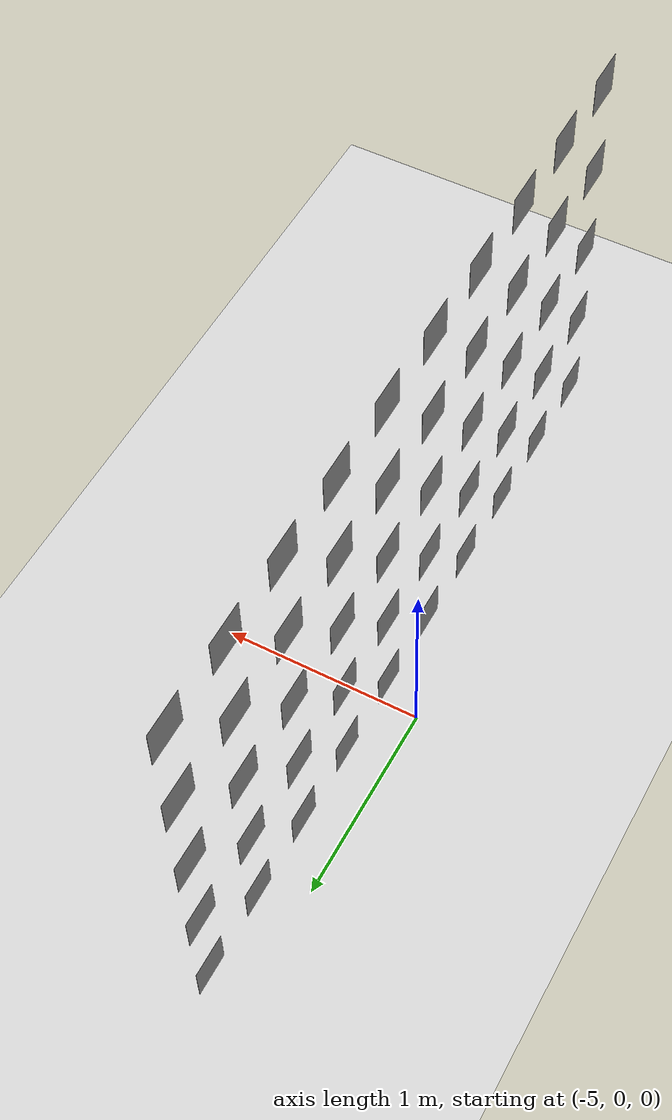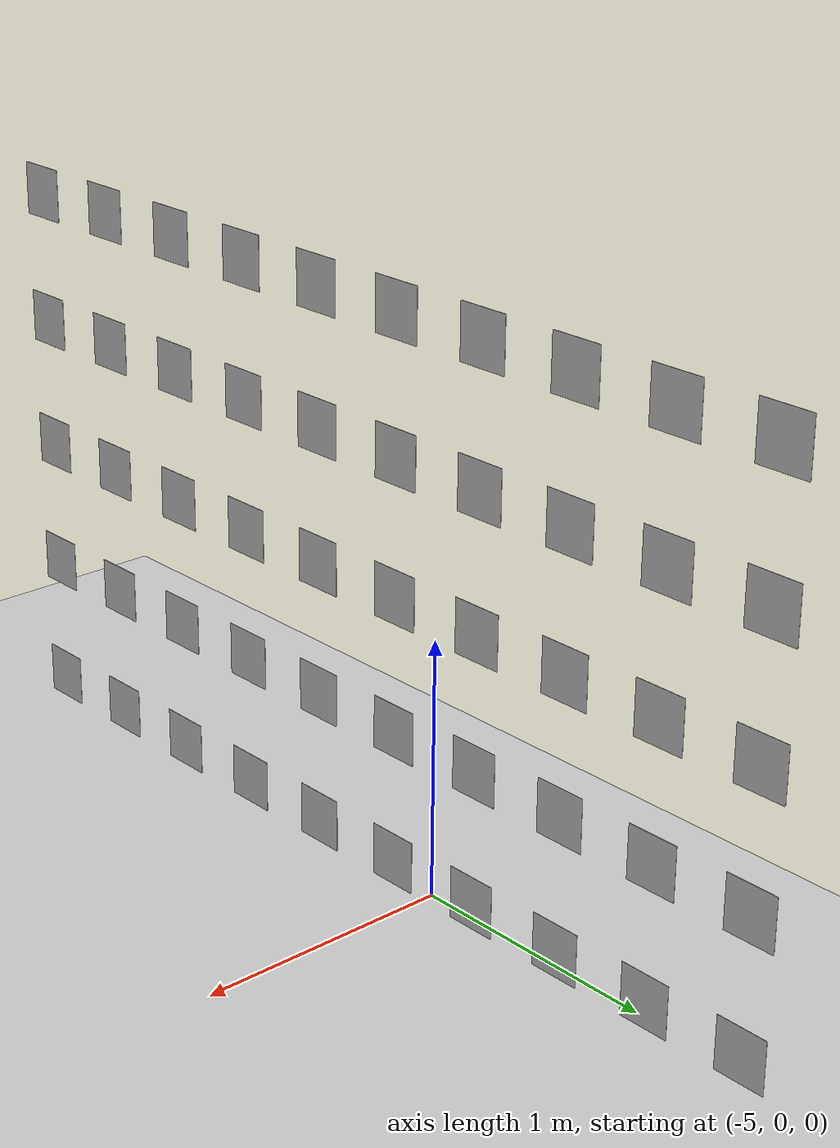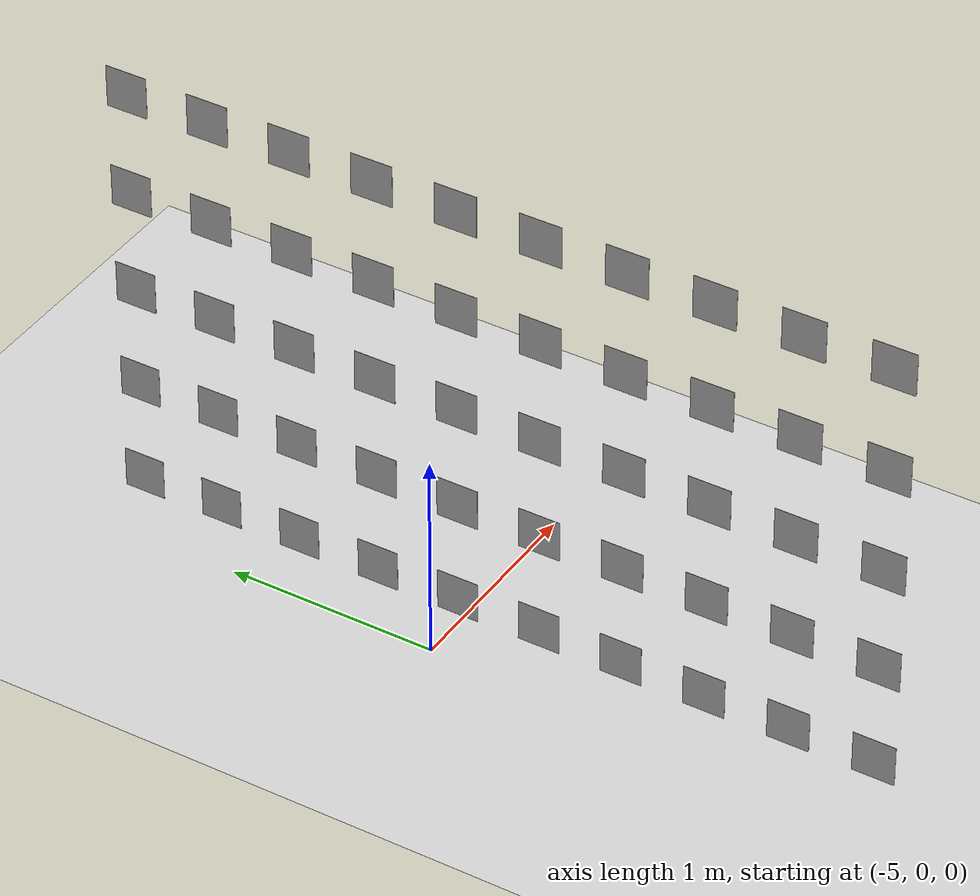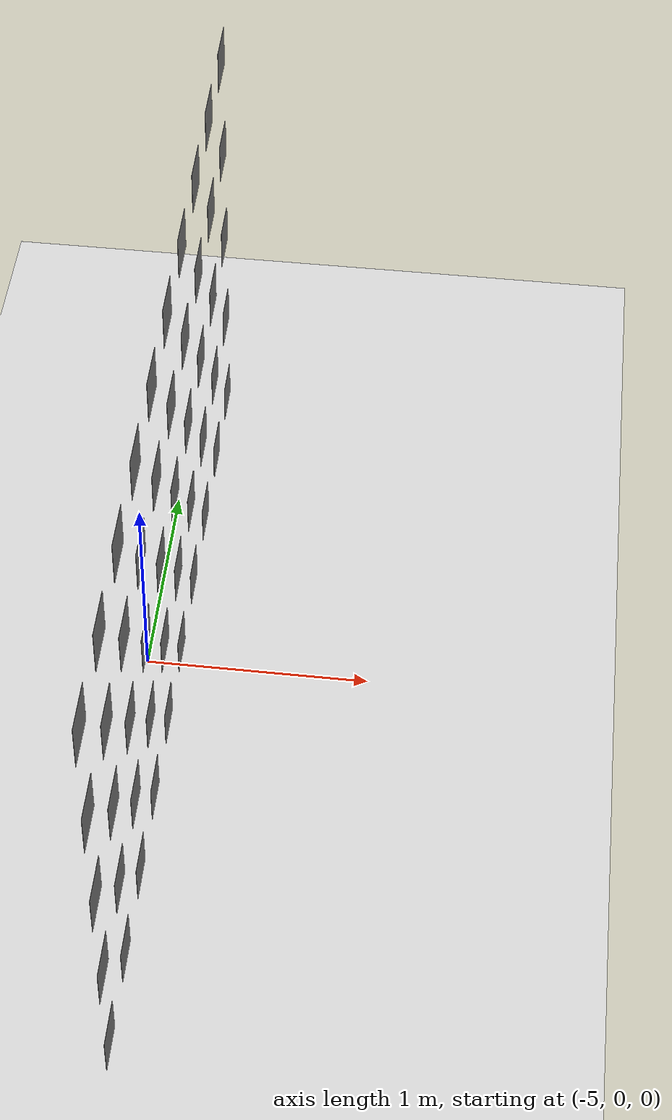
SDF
<sdf version="1.6">
 <world name="default">
  <model name="ground_plane">
   <static>1</static>
   <link name="link">
    <collision name="collision">
     <geometry><plane><normal>0 0 1</normal><size>100 100</size></plane></geometry>
     <surface><friction><ode><mu>100</mu><mu2>50</mu2></ode></friction></surface>
    </collision>
    <visual name="visual">
     <cast_shadows>0</cast_shadows>
     <geometry><plane><normal>0 0 1</normal><size>100 100</size></plane></geometry>
     <material>
      <script><uri>file://media/materials/scripts/gazebo.material</uri><name>Gazebo/Grey</name></script>
     </material>
    </visual>
   </link>
  </model>
  <model name="home1_tag2">
   <model name="aruco50">
    <static>1</static>
    <link name="link">
     <pose>0 0 0.1 0 -0 0</pose>
     <collision name="collision"><geometry><box><size>0.2 0.001 0.2</size></box></geometry></collision>
     <visual name="visual">
      <cast_shadows>0</cast_shadows>
      <geometry><box><size>0.2 0.001 0.2</size></box></geometry>
      <material>
       <script>
        <uri>model://aruco50/materials/scripts</uri>
        <uri>model://aruco50/materials/textures</uri>
        <name>vrc/aruco50</name>
       </script>
      </material>
     </visual>
    </link>
    <pose>4.95 -1.8 0.1 0 0 -1.57</pose>
   </model>
   <model name="aruco51">
    <static>1</static>
    <link name="link">
     <pose>0 0 0.1 0 -0 0</pose>
     <collision name="collision"><geometry><box><size>0.2 0.001 0.2</size></box></geometry></collision>
     <visual name="visual">
      <cast_shadows>0</cast_shadows>
      <geometry><box><size>0.2 0.001 0.2</size></box></geometry>
      <material>
       <script>
        <uri>model://aruco51/materials/scripts</uri>
        <uri>model://aruco51/materials/textures</uri>
        <name>vrc/aruco51</name>
       </script>
      </material>
     </visual>
    </link>
    <pose>4.95 -1.4 0.1 0 0 -1.57</pose>
   </model>
   <model name="aruco52">
    <static>1</static>
    <link name="link">
     <pose>0 0 0.1 0 -0 0</pose>
     <collision name="collision"><geometry><box><size>0.2 0.001 0.2</size></box></geometry></collision>
     <visual name="visual">
      <cast_shadows>0</cast_shadows>
      <geometry><box><size>0.2 0.001 0.2</size></box></geometry>
      <material>
       <script>
        <uri>model://aruco52/materials/scripts</uri>
        <uri>model://aruco52/materials/textures</uri>
        <name>vrc/aruco52</name>
       </script>
      </material>
     </visual>
    </link>
    <pose>4.95 -1 0.1 0 0 -1.57</pose>
   </model>
   <model name="aruco53">
    <static>1</static>
    <link name="link">
     <pose>0 0 0.1 0 -0 0</pose>
     <collision name="collision"><geometry><box><size>0.2 0.001 0.2</size></box></geometry></collision>
     <visual name="visual">
      <cast_shadows>0</cast_shadows>
      <geometry><box><size>0.2 0.001 0.2</size></box></geometry>
      <material>
       <script>
        <uri>model://aruco53/materials/scripts</uri>
        <uri>model://aruco53/materials/textures</uri>
        <name>vrc/aruco53</name>
       </script>
      </material>
     </visual>
    </link>
    <pose>4.95 -0.6 0.1 0 0 -1.57</pose>
   </model>
   <model name="aruco54">
    <static>1</static>
    <link name="link">
     <pose>0 0 0.1 0 -0 0</pose>
     <collision name="collision"><geometry><box><size>0.2 0.001 0.2</size></box></geometry></collision>
     <visual name="visual">
      <cast_shadows>0</cast_shadows>
      <geometry><box><size>0.2 0.001 0.2</size></box></geometry>
      <material>
       <script>
        <uri>model://aruco54/materials/scripts</uri>
        <uri>model://aruco54/materials/textures</uri>
        <name>vrc/aruco54</name>
       </script>
      </material>
     </visual>
    </link>
    <pose>4.95 -0.2 0.1 0 0 -1.57</pose>
   </model>
   <model name="aruco55">
    <static>1</static>
    <link name="link">
     <pose>0 0 0.1 0 -0 0</pose>
     <collision name="collision"><geometry><box><size>0.2 0.001 0.2</size></box></geometry></collision>
     <visual name="visual">
      <cast_shadows>0</cast_shadows>
      <geometry><box><size>0.2 0.001 0.2</size></box></geometry>
      <material>
       <script>
        <uri>model://aruco55/materials/scripts</uri>
        <uri>model://aruco55/materials/textures</uri>
        <name>vrc/aruco55</name>
       </script>
      </material>
     </visual>
    </link>
    <pose>4.95 0.2 0.1 0 0 -1.57</pose>
   </model>
   <model name="aruco56">
    <static>1</static>
    <link name="link">
     <pose>0 0 0.1 0 -0 0</pose>
     <collision name="collision"><geometry><box><size>0.2 0.001 0.2</size></box></geometry></collision>
     <visual name="visual">
      <cast_shadows>0</cast_shadows>
      <geometry><box><size>0.2 0.001 0.2</size></box></geometry>
      <material>
       <script>
        <uri>model://aruco56/materials/scripts</uri>
        <uri>model://aruco56/materials/textures</uri>
        <name>vrc/aruco56</name>
       </script>
      </material>
     </visual>
    </link>
    <pose>4.95 0.6 0.1 0 0 -1.57</pose>
   </model>
   <model name="aruco57">
    <static>1</static>
    <link name="link">
     <pose>0 0 0.1 0 -0 0</pose>
     <collision name="collision"><geometry><box><size>0.2 0.001 0.2</size></box></geometry></collision>
     <visual name="visual">
      <cast_shadows>0</cast_shadows>
      <geometry><box><size>0.2 0.001 0.2</size></box></geometry>
      <material>
       <script>
        <uri>model://aruco57/materials/scripts</uri>
        <uri>model://aruco57/materials/textures</uri>
        <name>vrc/aruco57</name>
       </script>
      </material>
     </visual>
    </link>
    <pose>4.95 1 0.1 0 0 -1.57</pose>
   </model>
   <model name="aruco58">
    <static>1</static>
    <link name="link">
     <pose>0 0 0.1 0 -0 0</pose>
     <collision name="collision"><geometry><box><size>0.2 0.001 0.2</size></box></geometry></collision>
     <visual name="visual">
      <cast_shadows>0</cast_shadows>
      <geometry><box><size>0.2 0.001 0.2</size></box></geometry>
      <material>
       <script>
        <uri>model://aruco58/materials/scripts</uri>
        <uri>model://aruco58/materials/textures</uri>
        <name>vrc/aruco58</name>
       </script>
      </material>
     </visual>
    </link>
    <pose>4.95 1.4 0.1 0 0 -1.57</pose>
   </model>
   <model name="aruco59">
    <static>1</static>
    <link name="link">
     <pose>0 0 0.1 0 -0 0</pose>
     <collision name="collision"><geometry><box><size>0.2 0.001 0.2</size></box></geometry></collision>
     <visual name="visual">
      <cast_shadows>0</cast_shadows>
      <geometry><box><size>0.2 0.001 0.2</size></box></geometry>
      <material>
       <script>
        <uri>model://aruco59/materials/scripts</uri>
        <uri>model://aruco59/materials/textures</uri>
        <name>vrc/aruco59</name>
       </script>
      </material>
     </visual>
    </link>
    <pose>4.95 1.8 0.1 0 0 -1.57</pose>
   </model>
   <model name="aruco60">
    <static>1</static>
    <link name="link">
     <pose>0 0 0.1 0 -0 0</pose>
     <collision name="collision"><geometry><box><size>0.2 0.001 0.2</size></box></geometry></collision>
     <visual name="visual">
      <cast_shadows>0</cast_shadows>
      <geometry><box><size>0.2 0.001 0.2</size></box></geometry>
      <material>
       <script>
        <uri>model://aruco60/materials/scripts</uri>
        <uri>model://aruco60/materials/textures</uri>
        <name>vrc/aruco60</name>
       </script>
      </material>
     </visual>
    </link>
    <pose>4.95 -1.8 0.6 0 0 -1.57</pose>
   </model>
   <model name="aruco61">
    <static>1</static>
    <link name="link">
     <pose>0 0 0.1 0 -0 0</pose>
     <collision name="collision"><geometry><box><size>0.2 0.001 0.2</size></box></geometry></collision>
     <visual name="visual">
      <cast_shadows>0</cast_shadows>
      <geometry><box><size>0.2 0.001 0.2</size></box></geometry>
      <material>
       <script>
        <uri>model://aruco61/materials/scripts</uri>
        <uri>model://aruco61/materials/textures</uri>
        <name>vrc/aruco61</name>
       </script>
      </material>
     </visual>
    </link>
    <pose>4.95 -1.4 0.6 0 0 -1.57</pose>
   </model>
   <model name="aruco62">
    <static>1</static>
    <link name="link">
     <pose>0 0 0.1 0 -0 0</pose>
     <collision name="collision"><geometry><box><size>0.2 0.001 0.2</size></box></geometry></collision>
     <visual name="visual">
      <cast_shadows>0</cast_shadows>
      <geometry><box><size>0.2 0.001 0.2</size></box></geometry>
      <material>
       <script>
        <uri>model://aruco62/materials/scripts</uri>
        <uri>model://aruco62/materials/textures</uri>
        <name>vrc/aruco62</name>
       </script>
      </material>
     </visual>
    </link>
    <pose>4.95 -1 0.6 0 0 -1.57</pose>
   </model>
   <model name="aruco63">
    <static>1</static>
    <link name="link">
     <pose>0 0 0.1 0 -0 0</pose>
     <collision name="collision"><geometry><box><size>0.2 0.001 0.2</size></box></geometry></collision>
     <visual name="visual">
      <cast_shadows>0</cast_shadows>
      <geometry><box><size>0.2 0.001 0.2</size></box></geometry>
      <material>
       <script>
        <uri>model://aruco63/materials/scripts</uri>
        <uri>model://aruco63/materials/textures</uri>
        <name>vrc/aruco63</name>
       </script>
      </material>
     </visual>
    </link>
    <pose>4.95 -0.6 0.6 0 0 -1.57</pose>
   </model>
   <model name="aruco64">
    <static>1</static>
    <link name="link">
     <pose>0 0 0.1 0 -0 0</pose>
     <collision name="collision"><geometry><box><size>0.2 0.001 0.2</size></box></geometry></collision>
     <visual name="visual">
      <cast_shadows>0</cast_shadows>
      <geometry><box><size>0.2 0.001 0.2</size></box></geometry>
      <material>
       <script>
        <uri>model://aruco64/materials/scripts</uri>
        <uri>model://aruco64/materials/textures</uri>
        <name>vrc/aruco64</name>
       </script>
      </material>
     </visual>
    </link>
    <pose>4.95 -0.2 0.6 0 0 -1.57</pose>
   </model>
   <model name="aruco65">
    <static>1</static>
    <link name="link">
     <pose>0 0 0.1 0 -0 0</pose>
     <collision name="collision"><geometry><box><size>0.2 0.001 0.2</size></box></geometry></collision>
     <visual name="visual">
      <cast_shadows>0</cast_shadows>
      <geometry><box><size>0.2 0.001 0.2</size></box></geometry>
      <material>
       <script>
        <uri>model://aruco65/materials/scripts</uri>
        <uri>model://aruco65/materials/textures</uri>
        <name>vrc/aruco65</name>
       </script>
      </material>
     </visual>
    </link>
    <pose>4.95 0.2 0.6 0 0 -1.57</pose>
   </model>
   <model name="aruco66">
    <static>1</static>
    <link name="link">
     <pose>0 0 0.1 0 -0 0</pose>
     <collision name="collision"><geometry><box><size>0.2 0.001 0.2</size></box></geometry></collision>
     <visual name="visual">
      <cast_shadows>0</cast_shadows>
      <geometry><box><size>0.2 0.001 0.2</size></box></geometry>
      <material>
       <script>
        <uri>model://aruco66/materials/scripts</uri>
        <uri>model://aruco66/materials/textures</uri>
        <name>vrc/aruco66</name>
       </script>
      </material>
     </visual>
    </link>
    <pose>4.95 0.6 0.6 0 0 -1.57</pose>
   </model>
   <model name="aruco67">
    <static>1</static>
    <link name="link">
     <pose>0 0 0.1 0 -0 0</pose>
     <collision name="collision"><geometry><box><size>0.2 0.001 0.2</size></box></geometry></collision>
     <visual name="visual">
      <cast_shadows>0</cast_shadows>
      <geometry><box><size>0.2 0.001 0.2</size></box></geometry>
      <material>
       <script>
        <uri>model://aruco67/materials/scripts</uri>
        <uri>model://aruco67/materials/textures</uri>
        <name>vrc/aruco67</name>
       </script>
      </material>
     </visual>
    </link>
    <pose>4.95 1 0.6 0 0 -1.57</pose>
   </model>
   <model name="aruco68">
    <static>1</static>
    <link name="link">
     <pose>0 0 0.1 0 -0 0</pose>
     <collision name="collision"><geometry><box><size>0.2 0.001 0.2</size></box></geometry></collision>
     <visual name="visual">
      <cast_shadows>0</cast_shadows>
      <geometry><box><size>0.2 0.001 0.2</size></box></geometry>
      <material>
       <script>
        <uri>model://aruco68/materials/scripts</uri>
        <uri>model://aruco68/materials/textures</uri>
        <name>vrc/aruco68</name>
       </script>
      </material>
     </visual>
    </link>
    <pose>4.95 1.4 0.6 0 0 -1.57</pose>
   </model>
   <model name="aruco69">
    <static>1</static>
    <link name="link">
     <pose>0 0 0.1 0 -0 0</pose>
     <collision name="collision"><geometry><box><size>0.2 0.001 0.2</size></box></geometry></collision>
     <visual name="visual">
      <cast_shadows>0</cast_shadows>
      <geometry><box><size>0.2 0.001 0.2</size></box></geometry>
      <material>
       <script>
        <uri>model://aruco69/materials/scripts</uri>
        <uri>model://aruco69/materials/textures</uri>
        <name>vrc/aruco69</name>
       </script>
      </material>
     </visual>
    </link>
    <pose>4.95 1.8 0.6 0 0 -1.57</pose>
   </model>
   <model name="aruco70">
    <static>1</static>
    <link name="link">
     <pose>0 0 0.1 0 -0 0</pose>
     <collision name="collision"><geometry><box><size>0.2 0.001 0.2</size></box></geometry></collision>
     <visual name="visual">
      <cast_shadows>0</cast_shadows>
      <geometry><box><size>0.2 0.001 0.2</size></box></geometry>
      <material>
       <script>
        <uri>model://aruco70/materials/scripts</uri>
        <uri>model://aruco70/materials/textures</uri>
        <name>vrc/aruco70</name>
       </script>
      </material>
     </visual>
    </link>
    <pose>4.95 -1.8 1.1 0 0 -1.57</pose>
   </model>
   <model name="aruco71">
    <static>1</static>
    <link name="link">
     <pose>0 0 0.1 0 -0 0</pose>
     <collision name="collision"><geometry><box><size>0.2 0.001 0.2</size></box></geometry></collision>
     <visual name="visual">
      <cast_shadows>0</cast_shadows>
      <geometry><box><size>0.2 0.001 0.2</size></box></geometry>
      <material>
       <script>
        <uri>model://aruco71/materials/scripts</uri>
        <uri>model://aruco71/materials/textures</uri>
        <name>vrc/aruco71</name>
       </script>
      </material>
     </visual>
    </link>
    <pose>4.95 -1.4 1.1 0 0 -1.57</pose>
   </model>
   <model name="aruco72">
    <static>1</static>
    <link name="link">
     <pose>0 0 0.1 0 -0 0</pose>
     <collision name="collision"><geometry><box><size>0.2 0.001 0.2</size></box></geometry></collision>
     <visual name="visual">
      <cast_shadows>0</cast_shadows>
      <geometry><box><size>0.2 0.001 0.2</size></box></geometry>
      <material>
       <script>
        <uri>model://aruco72/materials/scripts</uri>
        <uri>model://aruco72/materials/textures</uri>
        <name>vrc/aruco72</name>
       </script>
      </material>
     </visual>
    </link>
    <pose>4.95 -1 1.1 0 0 -1.57</pose>
   </model>
   <model name="aruco73">
    <static>1</static>
    <link name="link">
     <pose>0 0 0.1 0 -0 0</pose>
     <collision name="collision"><geometry><box><size>0.2 0.001 0.2</size></box></geometry></collision>
     <visual name="visual">
      <cast_shadows>0</cast_shadows>
      <geometry><box><size>0.2 0.001 0.2</size></box></geometry>
      <material>
       <script>
        <uri>model://aruco73/materials/scripts</uri>
        <uri>model://aruco73/materials/textures</uri>
        <name>vrc/aruco73</name>
       </script>
      </material>
     </visual>
    </link>
    <pose>4.95 -0.6 1.1 0 0 -1.57</pose>
   </model>
   <model name="aruco74">
    <static>1</static>
    <link name="link">
     <pose>0 0 0.1 0 -0 0</pose>
     <collision name="collision"><geometry><box><size>0.2 0.001 0.2</size></box></geometry></collision>
     <visual name="visual">
      <cast_shadows>0</cast_shadows>
      <geometry><box><size>0.2 0.001 0.2</size></box></geometry>
      <material>
       <script>
        <uri>model://aruco74/materials/scripts</uri>
        <uri>model://aruco74/materials/textures</uri>
        <name>vrc/aruco74</name>
       </script>
      </material>
     </visual>
    </link>
    <pose>4.95 -0.2 1.1 0 0 -1.57</pose>
   </model>
   <model name="aruco75">
    <static>1</static>
    <link name="link">
     <pose>0 0 0.1 0 -0 0</pose>
     <collision name="collision"><geometry><box><size>0.2 0.001 0.2</size></box></geometry></collision>
     <visual name="visual">
      <cast_shadows>0</cast_shadows>
      <geometry><box><size>0.2 0.001 0.2</size></box></geometry>
      <material>
       <script>
        <uri>model://aruco75/materials/scripts</uri>
        <uri>model://aruco75/materials/textures</uri>
        <name>vrc/aruco75</name>
       </script>
      </material>
     </visual>
    </link>
    <pose>4.95 0.2 1.1 0 0 -1.57</pose>
   </model>
   <model name="aruco76">
    <static>1</static>
    <link name="link">
     <pose>0 0 0.1 0 -0 0</pose>
     <collision name="collision"><geometry><box><size>0.2 0.001 0.2</size></box></geometry></collision>
     <visual name="visual">
      <cast_shadows>0</cast_shadows>
      <geometry><box><size>0.2 0.001 0.2</size></box></geometry>
      <material>
       <script>
        <uri>model://aruco76/materials/scripts</uri>
        <uri>model://aruco76/materials/textures</uri>
        <name>vrc/aruco76</name>
       </script>
      </material>
     </visual>
    </link>
    <pose>4.95 0.6 1.1 0 0 -1.57</pose>
   </model>
   <model name="aruco77">
    <static>1</static>
    <link name="link">
     <pose>0 0 0.1 0 -0 0</pose>
     <collision name="collision"><geometry><box><size>0.2 0.001 0.2</size></box></geometry></collision>
     <visual name="visual">
      <cast_shadows>0</cast_shadows>
      <geometry><box><size>0.2 0.001 0.2</size></box></geometry>
      <material>
       <script>
        <uri>model://aruco77/materials/scripts</uri>
        <uri>model://aruco77/materials/textures</uri>
        <name>vrc/aruco77</name>
       </script>
      </material>
     </visual>
    </link>
    <pose>4.95 1 1.1 0 0 -1.57</pose>
   </model>
   <model name="aruco78">
    <static>1</static>
    <link name="link">
     <pose>0 0 0.1 0 -0 0</pose>
     <collision name="collision"><geometry><box><size>0.2 0.001 0.2</size></box></geometry></collision>
     <visual name="visual">
      <cast_shadows>0</cast_shadows>
      <geometry><box><size>0.2 0.001 0.2</size></box></geometry>
      <material>
       <script>
        <uri>model://aruco78/materials/scripts</uri>
        <uri>model://aruco78/materials/textures</uri>
        <name>vrc/aruco78</name>
       </script>
      </material>
     </visual>
    </link>
    <pose>4.95 1.4 1.1 0 0 -1.57</pose>
   </model>
   <model name="aruco79">
    <static>1</static>
    <link name="link">
     <pose>0 0 0.1 0 -0 0</pose>
     <collision name="collision"><geometry><box><size>0.2 0.001 0.2</size></box></geometry></collision>
     <visual name="visual">
      <cast_shadows>0</cast_shadows>
      <geometry><box><size>0.2 0.001 0.2</size></box></geometry>
      <material>
       <script>
        <uri>model://aruco79/materials/scripts</uri>
        <uri>model://aruco79/materials/textures</uri>
        <name>vrc/aruco79</name>
       </script>
      </material>
     </visual>
    </link>
    <pose>4.95 1.8 1.1 0 0 -1.57</pose>
   </model>
   <model name="aruco80">
    <static>1</static>
    <link name="link">
     <pose>0 0 0.1 0 -0 0</pose>
     <collision name="collision"><geometry><box><size>0.2 0.001 0.2</size></box></geometry></collision>
     <visual name="visual">
      <cast_shadows>0</cast_shadows>
      <geometry><box><size>0.2 0.001 0.2</size></box></geometry>
      <material>
       <script>
        <uri>model://aruco80/materials/scripts</uri>
        <uri>model://aruco80/materials/textures</uri>
        <name>vrc/aruco80</name>
       </script>
      </material>
     </visual>
    </link>
    <pose>4.95 -1.8 1.6 0 0 -1.57</pose>
   </model>
   <model name="aruco81">
    <static>1</static>
    <link name="link">
     <pose>0 0 0.1 0 -0 0</pose>
     <collision name="collision"><geometry><box><size>0.2 0.001 0.2</size></box></geometry></collision>
     <visual name="visual">
      <cast_shadows>0</cast_shadows>
      <geometry><box><size>0.2 0.001 0.2</size></box></geometry>
      <material>
       <script>
        <uri>model://aruco81/materials/scripts</uri>
        <uri>model://aruco81/materials/textures</uri>
        <name>vrc/aruco81</name>
       </script>
      </material>
     </visual>
    </link>
    <pose>4.95 -1.4 1.6 0 0 -1.57</pose>
   </model>
   <model name="aruco82">
    <static>1</static>
    <link name="link">
     <pose>0 0 0.1 0 -0 0</pose>
     <collision name="collision"><geometry><box><size>0.2 0.001 0.2</size></box></geometry></collision>
     <visual name="visual">
      <cast_shadows>0</cast_shadows>
      <geometry><box><size>0.2 0.001 0.2</size></box></geometry>
      <material>
       <script>
        <uri>model://aruco82/materials/scripts</uri>
        <uri>model://aruco82/materials/textures</uri>
        <name>vrc/aruco82</name>
       </script>
      </material>
     </visual>
    </link>
    <pose>4.95 -1 1.6 0 0 -1.57</pose>
   </model>
   <model name="aruco83">
    <static>1</static>
    <link name="link">
     <pose>0 0 0.1 0 -0 0</pose>
     <collision name="collision"><geometry><box><size>0.2 0.001 0.2</size></box></geometry></collision>
     <visual name="visual">
      <cast_shadows>0</cast_shadows>
      <geometry><box><size>0.2 0.001 0.2</size></box></geometry>
      <material>
       <script>
        <uri>model://aruco83/materials/scripts</uri>
        <uri>model://aruco83/materials/textures</uri>
        <name>vrc/aruco83</name>
       </script>
      </material>
     </visual>
    </link>
    <pose>4.95 -0.6 1.6 0 0 -1.57</pose>
   </model>
   <model name="aruco84">
    <static>1</static>
    <link name="link">
     <pose>0 0 0.1 0 -0 0</pose>
     <collision name="collision"><geometry><box><size>0.2 0.001 0.2</size></box></geometry></collision>
     <visual name="visual">
      <cast_shadows>0</cast_shadows>
      <geometry><box><size>0.2 0.001 0.2</size></box></geometry>
      <material>
       <script>
        <uri>model://aruco84/materials/scripts</uri>
        <uri>model://aruco84/materials/textures</uri>
        <name>vrc/aruco84</name>
       </script>
      </material>
     </visual>
    </link>
    <pose>4.95 -0.2 1.6 0 0 -1.57</pose>
   </model>
   <model name="aruco85">
    <static>1</static>
    <link name="link">
     <pose>0 0 0.1 0 -0 0</pose>
     <collision name="collision"><geometry><box><size>0.2 0.001 0.2</size></box></geometry></collision>
     <visual name="visual">
      <cast_shadows>0</cast_shadows>
      <geometry><box><size>0.2 0.001 0.2</size></box></geometry>
      <material>
       <script>
        <uri>model://aruco85/materials/scripts</uri>
        <uri>model://aruco85/materials/textures</uri>
        <name>vrc/aruco85</name>
       </script>
      </material>
     </visual>
    </link>
    <pose>4.95 0.2 1.6 0 0 -1.57</pose>
   </model>
   <model name="aruco86">
    <static>1</static>
    <link name="link">
     <pose>0 0 0.1 0 -0 0</pose>
     <collision name="collision"><geometry><box><size>0.2 0.001 0.2</size></box></geometry></collision>
     <visual name="visual">
      <cast_shadows>0</cast_shadows>
      <geometry><box><size>0.2 0.001 0.2</size></box></geometry>
      <material>
       <script>
        <uri>model://aruco86/materials/scripts</uri>
        <uri>model://aruco86/materials/textures</uri>
        <name>vrc/aruco86</name>
       </script>
      </material>
     </visual>
    </link>
    <pose>4.95 0.6 1.6 0 0 -1.57</pose>
   </model>
   <model name="aruco87">
    <static>1</static>
    <link name="link">
     <pose>0 0 0.1 0 -0 0</pose>
     <collision name="collision"><geometry><box><size>0.2 0.001 0.2</size></box></geometry></collision>
     <visual name="visual">
      <cast_shadows>0</cast_shadows>
      <geometry><box><size>0.2 0.001 0.2</size></box></geometry>
      <material>
       <script>
        <uri>model://aruco87/materials/scripts</uri>
        <uri>model://aruco87/materials/textures</uri>
        <name>vrc/aruco87</name>
       </script>
      </material>
     </visual>
    </link>
    <pose>4.95 1 1.6 0 0 -1.57</pose>
   </model>
   <model name="aruco88">
    <static>1</static>
    <link name="link">
     <pose>0 0 0.1 0 -0 0</pose>
     <collision name="collision"><geometry><box><size>0.2 0.001 0.2</size></box></geometry></collision>
     <visual name="visual">
      <cast_shadows>0</cast_shadows>
      <geometry><box><size>0.2 0.001 0.2</size></box></geometry>
      <material>
       <script>
        <uri>model://aruco88/materials/scripts</uri>
        <uri>model://aruco88/materials/textures</uri>
        <name>vrc/aruco88</name>
       </script>
      </material>
     </visual>
    </link>
    <pose>4.95 1.4 1.6 0 0 -1.57</pose>
   </model>
   <model name="aruco89">
    <static>1</static>
    <link name="link">
     <pose>0 0 0.1 0 -0 0</pose>
     <collision name="collision"><geometry><box><size>0.2 0.001 0.2</size></box></geometry></collision>
     <visual name="visual">
      <cast_shadows>0</cast_shadows>
      <geometry><box><size>0.2 0.001 0.2</size></box></geometry>
      <material>
       <script>
        <uri>model://aruco89/materials/scripts</uri>
        <uri>model://aruco89/materials/textures</uri>
        <name>vrc/aruco89</name>
       </script>
      </material>
     </visual>
    </link>
    <pose>4.95 1.8 1.6 0 0 -1.57</pose>
   </model>
   <model name="aruco90">
    <static>1</static>
    <link name="link">
     <pose>0 0 0.1 0 -0 0</pose>
     <collision name="collision"><geometry><box><size>0.2 0.001 0.2</size></box></geometry></collision>
     <visual name="visual">
      <cast_shadows>0</cast_shadows>
      <geometry><box><size>0.2 0.001 0.2</size></box></geometry>
      <material>
       <script>
        <uri>model://aruco90/materials/scripts</uri>
        <uri>model://aruco90/materials/textures</uri>
        <name>vrc/aruco90</name>
       </script>
      </material>
     </visual>
    </link>
    <pose>4.95 -1.8 2.1 0 0 -1.57</pose>
   </model>
   <model name="aruco91">
    <static>1</static>
    <link name="link">
     <pose>0 0 0.1 0 -0 0</pose>
     <collision name="collision"><geometry><box><size>0.2 0.001 0.2</size></box></geometry></collision>
     <visual name="visual">
      <cast_shadows>0</cast_shadows>
      <geometry><box><size>0.2 0.001 0.2</size></box></geometry>
      <material>
       <script>
        <uri>model://aruco91/materials/scripts</uri>
        <uri>model://aruco91/materials/textures</uri>
        <name>vrc/aruco91</name>
       </script>
      </material>
     </visual>
    </link>
    <pose>4.95 -1.4 2.1 0 0 -1.57</pose>
   </model>
   <model name="aruco92">
    <static>1</static>
    <link name="link">
     <pose>0 0 0.1 0 -0 0</pose>
     <collision name="collision"><geometry><box><size>0.2 0.001 0.2</size></box></geometry></collision>
     <visual name="visual">
      <cast_shadows>0</cast_shadows>
      <geometry><box><size>0.2 0.001 0.2</size></box></geometry>
      <material>
       <script>
        <uri>model://aruco92/materials/scripts</uri>
        <uri>model://aruco92/materials/textures</uri>
        <name>vrc/aruco92</name>
       </script>
      </material>
     </visual>
    </link>
    <pose>4.95 -1 2.1 0 0 -1.57</pose>
   </model>
   <model name="aruco93">
    <static>1</static>
    <link name="link">
     <pose>0 0 0.1 0 -0 0</pose>
     <collision name="collision"><geometry><box><size>0.2 0.001 0.2</size></box></geometry></collision>
     <visual name="visual">
      <cast_shadows>0</cast_shadows>
      <geometry><box><size>0.2 0.001 0.2</size></box></geometry>
      <material>
       <script>
        <uri>model://aruco93/materials/scripts</uri>
        <uri>model://aruco93/materials/textures</uri>
        <name>vrc/aruco93</name>
       </script>
      </material>
     </visual>
    </link>
    <pose>4.95 -0.6 2.1 0 0 -1.57</pose>
   </model>
   <model name="aruco94">
    <static>1</static>
    <link name="link">
     <pose>0 0 0.1 0 -0 0</pose>
     <collision name="collision"><geometry><box><size>0.2 0.001 0.2</size></box></geometry></collision>
     <visual name="visual">
      <cast_shadows>0</cast_shadows>
      <geometry><box><size>0.2 0.001 0.2</size></box></geometry>
      <material>
       <script>
        <uri>model://aruco94/materials/scripts</uri>
        <uri>model://aruco94/materials/textures</uri>
        <name>vrc/aruco94</name>
       </script>
      </material>
     </visual>
    </link>
    <pose>4.95 -0.2 2.1 0 0 -1.57</pose>
   </model>
   <model name="aruco95">
    <static>1</static>
    <link name="link">
     <pose>0 0 0.1 0 -0 0</pose>
     <collision name="collision"><geometry><box><size>0.2 0.001 0.2</size></box></geometry></collision>
     <visual name="visual">
      <cast_shadows>0</cast_shadows>
      <geometry><box><size>0.2 0.001 0.2</size></box></geometry>
      <material>
       <script>
        <uri>model://aruco95/materials/scripts</uri>
        <uri>model://aruco95/materials/textures</uri>
        <name>vrc/aruco95</name>
       </script>
      </material>
     </visual>
    </link>
    <pose>4.95 0.2 2.1 0 0 -1.57</pose>
   </model>
   <model name="aruco96">
    <static>1</static>
    <link name="link">
     <pose>0 0 0.1 0 -0 0</pose>
     <collision name="collision"><geometry><box><size>0.2 0.001 0.2</size></box></geometry></collision>
     <visual name="visual">
      <cast_shadows>0</cast_shadows>
      <geometry><box><size>0.2 0.001 0.2</size></box></geometry>
      <material>
       <script>
        <uri>model://aruco96/materials/scripts</uri>
        <uri>model://aruco96/materials/textures</uri>
        <name>vrc/aruco96</name>
       </script>
      </material>
     </visual>
    </link>
    <pose>4.95 0.6 2.1 0 0 -1.57</pose>
   </model>
   <model name="aruco97">
    <static>1</static>
    <link name="link">
     <pose>0 0 0.1 0 -0 0</pose>
     <collision name="collision"><geometry><box><size>0.2 0.001 0.2</size></box></geometry></collision>
     <visual name="visual">
      <cast_shadows>0</cast_shadows>
      <geometry><box><size>0.2 0.001 0.2</size></box></geometry>
      <material>
       <script>
        <uri>model://aruco97/materials/scripts</uri>
        <uri>model://aruco97/materials/textures</uri>
        <name>vrc/aruco97</name>
       </script>
      </material>
     </visual>
    </link>
    <pose>4.95 1 2.1 0 0 -1.57</pose>
   </model>
   <model name="aruco98">
    <static>1</static>
    <link name="link">
     <pose>0 0 0.1 0 -0 0</pose>
     <collision name="collision"><geometry><box><size>0.2 0.001 0.2</size></box></geometry></collision>
     <visual name="visual">
      <cast_shadows>0</cast_shadows>
      <geometry><box><size>0.2 0.001 0.2</size></box></geometry>
      <material>
       <script>
        <uri>model://aruco98/materials/scripts</uri>
        <uri>model://aruco98/materials/textures</uri>
        <name>vrc/aruco98</name>
       </script>
      </material>
     </visual>
    </link>
    <pose>4.95 1.4 2.1 0 0 -1.57</pose>
   </model>
   <model name="aruco99">
    <static>1</static>
    <link name="link">
     <pose>0 0 0.1 0 -0 0</pose>
     <collision name="collision"><geometry><box><size>0.2 0.001 0.2</size></box></geometry></collision>
     <visual name="visual">
      <cast_shadows>0</cast_shadows>
      <geometry><box><size>0.2 0.001 0.2</size></box></geometry>
      <material>
       <script>
        <uri>model://aruco99/materials/scripts</uri>
        <uri>model://aruco99/materials/textures</uri>
        <name>vrc/aruco99</name>
       </script>
      </material>
     </visual>
    </link>
    <pose>4.95 1.8 2.1 0 0 -1.57</pose>
   </model>
   <static>0</static>
   <pose>-9.78755 -0.230922 0 0 -0 0</pose>
  </model>
 </world>
</sdf>
